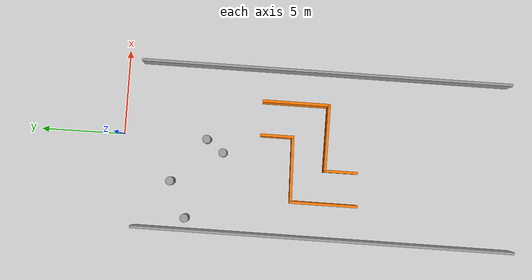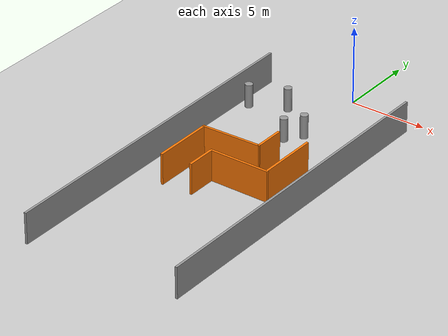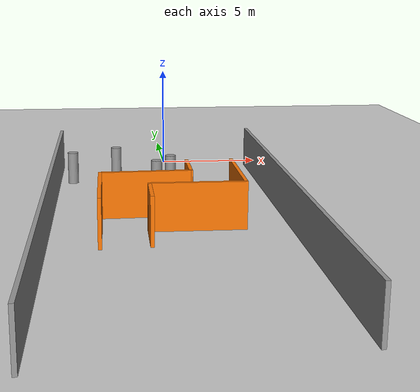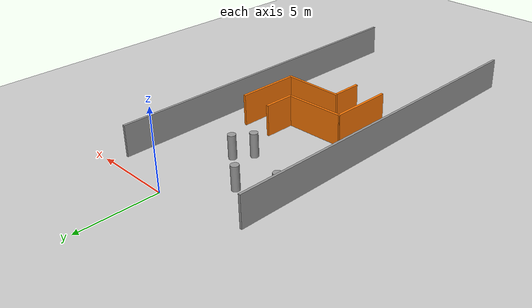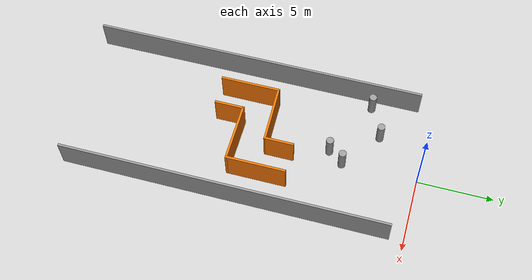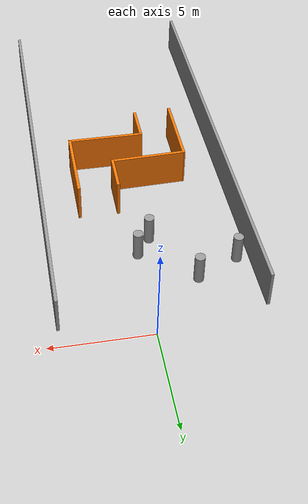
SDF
<sdf version="1.6">
 <world name="default">
  <light name="sun" type="directional">
   <pose>0 0 10 0 -0 0</pose>
   <diffuse>0.8 0.8 0.8 1</diffuse>
   <specular>0.2 0.2 0.2 1</specular>
   <attenuation>
    <range>1000</range>
    <constant>0.9</constant>
    <linear>0.01</linear>
    <quadratic>0.001</quadratic>
   </attenuation>
   <direction>-0.5 0.1 -0.9</direction>
  </light>
  <model name="ground_plane">
   <static>1</static>
   <link name="link">
    <collision name="collision">
     <geometry><plane><normal>0 0 1</normal><size>100 100</size></plane></geometry>
     <surface><friction><ode><mu>100</mu><mu2>50</mu2></ode></friction></surface>
    </collision>
    <visual name="visual">
     <cast_shadows>0</cast_shadows>
     <geometry><plane><normal>0 0 1</normal><size>100 100</size></plane></geometry>
     <material>
      <script><uri>file://media/materials/scripts/gazebo.material</uri><name>Gazebo/Grey</name></script>
     </material>
    </visual>
    <velocity_decay><linear>0</linear><angular>0</angular></velocity_decay>
   </link>
  </model>
  <physics name="default_physics" default="0" type="ode">
   <max_step_size>0.001</max_step_size>
   <real_time_factor>1</real_time_factor>
   <real_time_update_rate>1000</real_time_update_rate>
  </physics>
  <scene><ambient>0.4 0.4 0.4 1</ambient><background>0.7 0.7 0.7 1</background><shadows>1</shadows></scene>
  <spherical_coordinates>
   <surface_model>EARTH_WGS84</surface_model>
   <latitude_deg>0</latitude_deg>
   <longitude_deg>0</longitude_deg>
   <elevation>0</elevation>
   <heading_deg>0</heading_deg>
  </spherical_coordinates>
  <gravity>0 0 -9.8</gravity>
  <magnetic_field>6e-06 2.3e-05 -4.2e-05</magnetic_field>
  <atmosphere type="adiabatic"/>
  <model name="box_1">
   <link name="link">
    <inertial>
     <mass>1</mass>
     <inertia><ixx>0.145833</ixx><ixy>0</ixy><ixz>0</ixz><iyy>0.145833</iyy><iyz>0</iyz><izz>0.125</izz></inertia>
    </inertial>
    <visual name="visual">
     <geometry><cylinder><radius>0.25</radius><length>2</length></cylinder></geometry>
     <material>
      <script><name>Gazebo/Grey</name><uri>file://media/materials/scripts/gazebo.material</uri></script>
      <ambient>0.3 0.3 0.3 1</ambient>
      <diffuse>0.7 0.7 0.7 1</diffuse>
      <specular>0.01 0.01 0.01 1</specular>
      <emissive>0 0 0 1</emissive>
      <shader type="vertex"><normal_map>__default__</normal_map></shader>
     </material>
    </visual>
    <collision name="collision">
     <geometry><cylinder><radius>0.5</radius><length>1</length></cylinder></geometry>
     <surface>
      <friction>
       <ode><mu>1</mu><mu2>1</mu2><fdir1>0 0 0</fdir1><slip1>0</slip1><slip2>0</slip2></ode>
       <torsional>
        <coefficient>1</coefficient>
        <patch_radius>0</patch_radius>
        <surface_radius>0</surface_radius>
        <use_patch_radius>1</use_patch_radius>
        <ode><slip>0</slip></ode>
       </torsional>
      </friction>
      <bounce><restitution_coefficient>0</restitution_coefficient><threshold>1e+06</threshold></bounce>
      <contact>
       <collide_without_contact>0</collide_without_contact>
       <collide_without_contact_bitmask>1</collide_without_contact_bitmask>
       <collide_bitmask>1</collide_bitmask>
       <ode>
        <soft_cfm>0</soft_cfm>
        <soft_erp>0.2</soft_erp>
        <kp>1e+13</kp>
        <kd>1</kd>
        <max_vel>0.01</max_vel>
        <min_depth>0</min_depth>
       </ode>
       <bullet>
        <split_impulse>1</split_impulse>
        <split_impulse_penetration_threshold>-0.01</split_impulse_penetration_threshold>
        <soft_cfm>0</soft_cfm>
        <soft_erp>0.2</soft_erp>
        <kp>1e+13</kp>
        <kd>1</kd>
       </bullet>
      </contact>
     </surface>
    </collision>
   </link>
   <static>0</static>
   <pose>-2.6 -3 0.5 0 -0 0</pose>
  </model>
  <model name="box_2">
   <link name="link">
    <inertial>
     <mass>1</mass>
     <inertia><ixx>0.145833</ixx><ixy>0</ixy><ixz>0</ixz><iyy>0.145833</iyy><iyz>0</iyz><izz>0.125</izz></inertia>
    </inertial>
    <visual name="visual">
     <geometry><cylinder><radius>0.25</radius><length>2</length></cylinder></geometry>
     <material>
      <script><name>Gazebo/Grey</name><uri>file://media/materials/scripts/gazebo.material</uri></script>
      <ambient>0.3 0.3 0.3 1</ambient>
      <diffuse>0.7 0.7 0.7 1</diffuse>
      <specular>0.01 0.01 0.01 1</specular>
      <emissive>0 0 0 1</emissive>
      <shader type="vertex"><normal_map>__default__</normal_map></shader>
     </material>
    </visual>
    <collision name="collision">
     <geometry><cylinder><radius>0.5</radius><length>1</length></cylinder></geometry>
     <surface>
      <friction>
       <ode><mu>1</mu><mu2>1</mu2><fdir1>0 0 0</fdir1><slip1>0</slip1><slip2>0</slip2></ode>
       <torsional>
        <coefficient>1</coefficient>
        <patch_radius>0</patch_radius>
        <surface_radius>0</surface_radius>
        <use_patch_radius>1</use_patch_radius>
        <ode><slip>0</slip></ode>
       </torsional>
      </friction>
      <bounce><restitution_coefficient>0</restitution_coefficient><threshold>1e+06</threshold></bounce>
      <contact>
       <collide_without_contact>0</collide_without_contact>
       <collide_without_contact_bitmask>1</collide_without_contact_bitmask>
       <collide_bitmask>1</collide_bitmask>
       <ode>
        <soft_cfm>0</soft_cfm>
        <soft_erp>0.2</soft_erp>
        <kp>1e+13</kp>
        <kd>1</kd>
        <max_vel>0.01</max_vel>
        <min_depth>0</min_depth>
       </ode>
       <bullet>
        <split_impulse>1</split_impulse>
        <split_impulse_penetration_threshold>-0.01</split_impulse_penetration_threshold>
        <soft_cfm>0</soft_cfm>
        <soft_erp>0.2</soft_erp>
        <kp>1e+13</kp>
        <kd>1</kd>
       </bullet>
      </contact>
     </surface>
    </collision>
   </link>
   <static>0</static>
   <pose>-4.73333 -4 0.5 0 -0 0</pose>
  </model>
  <model name="box_3">
   <link name="link">
    <inertial>
     <mass>1</mass>
     <inertia><ixx>0.145833</ixx><ixy>0</ixy><ixz>0</ixz><iyy>0.145833</iyy><iyz>0</iyz><izz>0.125</izz></inertia>
    </inertial>
    <visual name="visual">
     <geometry><cylinder><radius>0.25</radius><length>2</length></cylinder></geometry>
     <material>
      <script><name>Gazebo/Grey</name><uri>file://media/materials/scripts/gazebo.material</uri></script>
      <ambient>0.3 0.3 0.3 1</ambient>
      <diffuse>0.7 0.7 0.7 1</diffuse>
      <specular>0.01 0.01 0.01 1</specular>
      <emissive>0 0 0 1</emissive>
      <shader type="vertex"><normal_map>__default__</normal_map></shader>
     </material>
    </visual>
    <collision name="collision">
     <geometry><cylinder><radius>0.5</radius><length>1</length></cylinder></geometry>
     <surface>
      <friction>
       <ode><mu>1</mu><mu2>1</mu2><fdir1>0 0 0</fdir1><slip1>0</slip1><slip2>0</slip2></ode>
       <torsional>
        <coefficient>1</coefficient>
        <patch_radius>0</patch_radius>
        <surface_radius>0</surface_radius>
        <use_patch_radius>1</use_patch_radius>
        <ode><slip>0</slip></ode>
       </torsional>
      </friction>
      <bounce><restitution_coefficient>0</restitution_coefficient><threshold>1e+06</threshold></bounce>
      <contact>
       <collide_without_contact>0</collide_without_contact>
       <collide_without_contact_bitmask>1</collide_without_contact_bitmask>
       <collide_bitmask>1</collide_bitmask>
       <ode>
        <soft_cfm>0</soft_cfm>
        <soft_erp>0.2</soft_erp>
        <kp>1e+13</kp>
        <kd>1</kd>
        <max_vel>0.01</max_vel>
        <min_depth>0</min_depth>
       </ode>
       <bullet>
        <split_impulse>1</split_impulse>
        <split_impulse_penetration_threshold>-0.01</split_impulse_penetration_threshold>
        <soft_cfm>0</soft_cfm>
        <soft_erp>0.2</soft_erp>
        <kp>1e+13</kp>
        <kd>1</kd>
       </bullet>
      </contact>
     </surface>
    </collision>
   </link>
   <static>0</static>
   <pose>-0.733333 -6 0.5 0 -0 0</pose>
  </model>
  <model name="box_4">
   <link name="link">
    <inertial>
     <mass>1</mass>
     <inertia><ixx>0.145833</ixx><ixy>0</ixy><ixz>0</ixz><iyy>0.145833</iyy><iyz>0</iyz><izz>0.125</izz></inertia>
    </inertial>
    <visual name="visual">
     <geometry><cylinder><radius>0.25</radius><length>2</length></cylinder></geometry>
     <material>
      <script><name>Gazebo/Grey</name><uri>file://media/materials/scripts/gazebo.material</uri></script>
      <ambient>0.3 0.3 0.3 1</ambient>
      <diffuse>0.7 0.7 0.7 1</diffuse>
      <specular>0.01 0.01 0.01 1</specular>
      <emissive>0 0 0 1</emissive>
      <shader type="vertex"><normal_map>__default__</normal_map></shader>
     </material>
    </visual>
    <collision name="collision">
     <geometry><cylinder><radius>0.5</radius><length>1</length></cylinder></geometry>
     <surface>
      <friction>
       <ode><mu>1</mu><mu2>1</mu2><fdir1>0 0 0</fdir1><slip1>0</slip1><slip2>0</slip2></ode>
       <torsional>
        <coefficient>1</coefficient>
        <patch_radius>0</patch_radius>
        <surface_radius>0</surface_radius>
        <use_patch_radius>1</use_patch_radius>
        <ode><slip>0</slip></ode>
       </torsional>
      </friction>
      <bounce><restitution_coefficient>0</restitution_coefficient><threshold>1e+06</threshold></bounce>
      <contact>
       <collide_without_contact>0</collide_without_contact>
       <collide_without_contact_bitmask>1</collide_without_contact_bitmask>
       <collide_bitmask>1</collide_bitmask>
       <ode>
        <soft_cfm>0</soft_cfm>
        <soft_erp>0.2</soft_erp>
        <kp>1e+13</kp>
        <kd>1</kd>
        <max_vel>0.01</max_vel>
        <min_depth>0</min_depth>
       </ode>
       <bullet>
        <split_impulse>1</split_impulse>
        <split_impulse_penetration_threshold>-0.01</split_impulse_penetration_threshold>
        <soft_cfm>0</soft_cfm>
        <soft_erp>0.2</soft_erp>
        <kp>1e+13</kp>
        <kd>1</kd>
       </bullet>
      </contact>
     </surface>
    </collision>
   </link>
   <static>0</static>
   <pose>0 -5 0.5 0 -0 0</pose>
  </model>
  <model name="jy_world_0">
   <link name="Wall_29">
    <pose>-4.806 0 0 0 0 -1.5708</pose>
    <visual name="Wall_29_Visual">
     <pose>0 0 1 0 -0 0</pose>
     <geometry><box><size>22.5 0.15 2</size></box></geometry>
     <material>
      <script><uri>file://media/materials/scripts/gazebo.material</uri><name>Gazebo/Grey</name></script>
      <ambient>1 1 1 1</ambient>
      <diffuse>0.7 0.7 0.7 1</diffuse>
      <specular>0.01 0.01 0.01 1</specular>
      <emissive>0 0 0 1</emissive>
     </material>
    </visual>
    <collision name="Wall_29_Collision">
     <pose>0 0 1 0 -0 0</pose>
     <geometry><box><size>22.5 0.15 2</size></box></geometry>
     <surface>
      <friction>
       <ode><mu>1</mu><mu2>1</mu2><fdir1>0 0 0</fdir1><slip1>0</slip1><slip2>0</slip2></ode>
       <torsional>
        <coefficient>1</coefficient>
        <patch_radius>0</patch_radius>
        <surface_radius>0</surface_radius>
        <use_patch_radius>1</use_patch_radius>
        <ode><slip>0</slip></ode>
       </torsional>
      </friction>
      <bounce><restitution_coefficient>0</restitution_coefficient><threshold>1e+06</threshold></bounce>
      <contact>
       <collide_without_contact>0</collide_without_contact>
       <collide_without_contact_bitmask>1</collide_without_contact_bitmask>
       <collide_bitmask>1</collide_bitmask>
       <ode>
        <soft_cfm>0</soft_cfm>
        <soft_erp>0.2</soft_erp>
        <kp>1e+13</kp>
        <kd>1</kd>
        <max_vel>0.01</max_vel>
        <min_depth>0</min_depth>
       </ode>
       <bullet>
        <split_impulse>1</split_impulse>
        <split_impulse_penetration_threshold>-0.01</split_impulse_penetration_threshold>
        <soft_cfm>0</soft_cfm>
        <soft_erp>0.2</soft_erp>
        <kp>1e+13</kp>
        <kd>1</kd>
       </bullet>
      </contact>
     </surface>
    </collision>
   </link>
   <link name="Wall_36">
    <pose>5 0.322999 0 0 0 -1.5708</pose>
    <inertial>
     <mass>1</mass>
     <inertia><ixx>1</ixx><ixy>0</ixy><ixz>0</ixz><iyy>1</iyy><iyz>0</iyz><izz>1</izz></inertia>
    </inertial>
    <visual name="Wall_36_Visual">
     <pose>0 0 1 0 -0 0</pose>
     <geometry><box><size>21.75 0.15 2</size></box></geometry>
     <material>
      <script><uri>file://media/materials/scripts/gazebo.material</uri><name>Gazebo/Grey</name></script>
      <ambient>1 1 1 1</ambient>
      <diffuse>0.7 0.7 0.7 1</diffuse>
      <specular>0.01 0.01 0.01 1</specular>
      <emissive>0 0 0 1</emissive>
      <shader type="vertex"><normal_map>__default__</normal_map></shader>
     </material>
    </visual>
    <collision name="Wall_36_Collision">
     <pose>0 0 1 0 -0 0</pose>
     <geometry><box><size>21.75 0.15 2</size></box></geometry>
     <surface>
      <friction>
       <ode><mu>1</mu><mu2>1</mu2><fdir1>0 0 0</fdir1><slip1>0</slip1><slip2>0</slip2></ode>
       <torsional>
        <coefficient>1</coefficient>
        <patch_radius>0</patch_radius>
        <surface_radius>0</surface_radius>
        <use_patch_radius>1</use_patch_radius>
        <ode><slip>0</slip></ode>
       </torsional>
      </friction>
      <bounce><restitution_coefficient>0</restitution_coefficient><threshold>1e+06</threshold></bounce>
      <contact>
       <collide_without_contact>0</collide_without_contact>
       <collide_without_contact_bitmask>1</collide_without_contact_bitmask>
       <collide_bitmask>1</collide_bitmask>
       <ode>
        <soft_cfm>0</soft_cfm>
        <soft_erp>0.2</soft_erp>
        <kp>1e+13</kp>
        <kd>1</kd>
        <max_vel>0.01</max_vel>
        <min_depth>0</min_depth>
       </ode>
       <bullet>
        <split_impulse>1</split_impulse>
        <split_impulse_penetration_threshold>-0.01</split_impulse_penetration_threshold>
        <soft_cfm>0</soft_cfm>
        <soft_erp>0.2</soft_erp>
        <kp>1e+13</kp>
        <kd>1</kd>
       </bullet>
      </contact>
     </surface>
    </collision>
   </link>
   <link name="Wall_47">
    <pose>3.076 2.012 0 0 0 -1.5708</pose>
    <visual name="Wall_47_Visual">
     <pose>0 0 1 0 -0 0</pose>
     <geometry><box><size>4 0.15 2</size></box></geometry>
     <material>
      <script><uri>file://media/materials/scripts/gazebo.material</uri><name>Gazebo/Grey</name></script>
      <ambient>0.996078 0.47451 0.0196078 1</ambient>
      <diffuse>0.7 0.7 0.7 1</diffuse>
      <specular>0.01 0.01 0.01 1</specular>
      <emissive>0 0 0 1</emissive>
     </material>
    </visual>
    <collision name="Wall_47_Collision">
     <pose>0 0 1 0 -0 0</pose>
     <geometry><box><size>4 0.15 2</size></box></geometry>
     <surface>
      <friction>
       <ode><mu>1</mu><mu2>1</mu2><fdir1>0 0 0</fdir1><slip1>0</slip1><slip2>0</slip2></ode>
       <torsional>
        <coefficient>1</coefficient>
        <patch_radius>0</patch_radius>
        <surface_radius>0</surface_radius>
        <use_patch_radius>1</use_patch_radius>
        <ode><slip>0</slip></ode>
       </torsional>
      </friction>
      <bounce><restitution_coefficient>0</restitution_coefficient><threshold>1e+06</threshold></bounce>
      <contact>
       <collide_without_contact>0</collide_without_contact>
       <collide_without_contact_bitmask>1</collide_without_contact_bitmask>
       <collide_bitmask>1</collide_bitmask>
       <ode>
        <soft_cfm>0</soft_cfm>
        <soft_erp>0.2</soft_erp>
        <kp>1e+13</kp>
        <kd>1</kd>
        <max_vel>0.01</max_vel>
        <min_depth>0</min_depth>
       </ode>
       <bullet>
        <split_impulse>1</split_impulse>
        <split_impulse_penetration_threshold>-0.01</split_impulse_penetration_threshold>
        <soft_cfm>0</soft_cfm>
        <soft_erp>0.2</soft_erp>
        <kp>1e+13</kp>
        <kd>1</kd>
       </bullet>
      </contact>
     </surface>
    </collision>
   </link>
   <link name="Wall_51">
    <pose>1.076 3.012 0 0 0 -1.5708</pose>
    <visual name="Wall_51_Visual">
     <pose>0 0 1 0 -0 0</pose>
     <geometry><box><size>2 0.15 2</size></box></geometry>
     <material>
      <script><uri>file://media/materials/scripts/gazebo.material</uri><name>Gazebo/Grey</name></script>
      <ambient>0.996078 0.47451 0.0196078 1</ambient>
      <diffuse>0.7 0.7 0.7 1</diffuse>
      <specular>0.01 0.01 0.01 1</specular>
      <emissive>0 0 0 1</emissive>
     </material>
    </visual>
    <collision name="Wall_51_Collision">
     <pose>0 0 1 0 -0 0</pose>
     <geometry><box><size>2 0.15 2</size></box></geometry>
     <surface>
      <friction>
       <ode><mu>1</mu><mu2>1</mu2><fdir1>0 0 0</fdir1><slip1>0</slip1><slip2>0</slip2></ode>
       <torsional>
        <coefficient>1</coefficient>
        <patch_radius>0</patch_radius>
        <surface_radius>0</surface_radius>
        <use_patch_radius>1</use_patch_radius>
        <ode><slip>0</slip></ode>
       </torsional>
      </friction>
      <bounce><restitution_coefficient>0</restitution_coefficient><threshold>1e+06</threshold></bounce>
      <contact>
       <collide_without_contact>0</collide_without_contact>
       <collide_without_contact_bitmask>1</collide_without_contact_bitmask>
       <collide_bitmask>1</collide_bitmask>
       <ode>
        <soft_cfm>0</soft_cfm>
        <soft_erp>0.2</soft_erp>
        <kp>1e+13</kp>
        <kd>1</kd>
        <max_vel>0.01</max_vel>
        <min_depth>0</min_depth>
       </ode>
       <bullet>
        <split_impulse>1</split_impulse>
        <split_impulse_penetration_threshold>-0.01</split_impulse_penetration_threshold>
        <soft_cfm>0</soft_cfm>
        <soft_erp>0.2</soft_erp>
        <kp>1e+13</kp>
        <kd>1</kd>
       </bullet>
      </contact>
     </surface>
    </collision>
   </link>
   <link name="Wall_53">
    <pose>-0.829 2.0265 0 0 0 -3.10984</pose>
    <visual name="Wall_53_Visual">
     <pose>0 0 1 0 -0 0</pose>
     <geometry><box><size>3.96192 0.15 2</size></box></geometry>
     <material>
      <script><uri>file://media/materials/scripts/gazebo.material</uri><name>Gazebo/Grey</name></script>
      <ambient>0.996078 0.47451 0.0196078 1</ambient>
      <diffuse>0.7 0.7 0.7 1</diffuse>
      <specular>0.01 0.01 0.01 1</specular>
      <emissive>0 0 0 1</emissive>
     </material>
    </visual>
    <collision name="Wall_53_Collision">
     <pose>0 0 1 0 -0 0</pose>
     <geometry><box><size>3.96192 0.15 2</size></box></geometry>
     <surface>
      <friction>
       <ode><mu>1</mu><mu2>1</mu2><fdir1>0 0 0</fdir1><slip1>0</slip1><slip2>0</slip2></ode>
       <torsional>
        <coefficient>1</coefficient>
        <patch_radius>0</patch_radius>
        <surface_radius>0</surface_radius>
        <use_patch_radius>1</use_patch_radius>
        <ode><slip>0</slip></ode>
       </torsional>
      </friction>
      <bounce><restitution_coefficient>0</restitution_coefficient><threshold>1e+06</threshold></bounce>
      <contact>
       <collide_without_contact>0</collide_without_contact>
       <collide_without_contact_bitmask>1</collide_without_contact_bitmask>
       <collide_bitmask>1</collide_bitmask>
       <ode>
        <soft_cfm>0</soft_cfm>
        <soft_erp>0.2</soft_erp>
        <kp>1e+13</kp>
        <kd>1</kd>
        <max_vel>0.01</max_vel>
        <min_depth>0</min_depth>
       </ode>
       <bullet>
        <split_impulse>1</split_impulse>
        <split_impulse_penetration_threshold>-0.01</split_impulse_penetration_threshold>
        <soft_cfm>0</soft_cfm>
        <soft_erp>0.2</soft_erp>
        <kp>1e+13</kp>
        <kd>1</kd>
       </bullet>
      </contact>
     </surface>
    </collision>
   </link>
   <link name="Wall_55">
    <pose>1.151 0.086999 0 0 -0 3.14159</pose>
    <visual name="Wall_55_Visual">
     <pose>0 0 1 0 -0 0</pose>
     <geometry><box><size>4 0.15 2</size></box></geometry>
     <material>
      <script><uri>file://media/materials/scripts/gazebo.material</uri><name>Gazebo/Grey</name></script>
      <ambient>0.996078 0.47451 0.0196078 1</ambient>
      <diffuse>0.7 0.7 0.7 1</diffuse>
      <specular>0.01 0.01 0.01 1</specular>
      <emissive>0 0 0 1</emissive>
     </material>
    </visual>
    <collision name="Wall_55_Collision">
     <pose>0 0 1 0 -0 0</pose>
     <geometry><box><size>4 0.15 2</size></box></geometry>
     <surface>
      <friction>
       <ode><mu>1</mu><mu2>1</mu2><fdir1>0 0 0</fdir1><slip1>0</slip1><slip2>0</slip2></ode>
       <torsional>
        <coefficient>1</coefficient>
        <patch_radius>0</patch_radius>
        <surface_radius>0</surface_radius>
        <use_patch_radius>1</use_patch_radius>
        <ode><slip>0</slip></ode>
       </torsional>
      </friction>
      <bounce><restitution_coefficient>0</restitution_coefficient><threshold>1e+06</threshold></bounce>
      <contact>
       <collide_without_contact>0</collide_without_contact>
       <collide_without_contact_bitmask>1</collide_without_contact_bitmask>
       <collide_bitmask>1</collide_bitmask>
       <ode>
        <soft_cfm>0</soft_cfm>
        <soft_erp>0.2</soft_erp>
        <kp>1e+13</kp>
        <kd>1</kd>
        <max_vel>0.01</max_vel>
        <min_depth>0</min_depth>
       </ode>
       <bullet>
        <split_impulse>1</split_impulse>
        <split_impulse_penetration_threshold>-0.01</split_impulse_penetration_threshold>
        <soft_cfm>0</soft_cfm>
        <soft_erp>0.2</soft_erp>
        <kp>1e+13</kp>
        <kd>1</kd>
       </bullet>
      </contact>
     </surface>
    </collision>
   </link>
   <link name="Wall_57">
    <pose>-0.774 -0.838001 0 0 0 -1.5708</pose>
    <visual name="Wall_57_Visual">
     <pose>0 0 1 0 -0 0</pose>
     <geometry><box><size>2 0.15 2</size></box></geometry>
     <material>
      <script><uri>file://media/materials/scripts/gazebo.material</uri><name>Gazebo/Grey</name></script>
      <ambient>0.996078 0.47451 0.0196078 1</ambient>
      <diffuse>0.7 0.7 0.7 1</diffuse>
      <specular>0.01 0.01 0.01 1</specular>
      <emissive>0 0 0 1</emissive>
     </material>
    </visual>
    <collision name="Wall_57_Collision">
     <pose>0 0 1 0 -0 0</pose>
     <geometry><box><size>2 0.15 2</size></box></geometry>
     <surface>
      <friction>
       <ode><mu>1</mu><mu2>1</mu2><fdir1>0 0 0</fdir1><slip1>0</slip1><slip2>0</slip2></ode>
       <torsional>
        <coefficient>1</coefficient>
        <patch_radius>0</patch_radius>
        <surface_radius>0</surface_radius>
        <use_patch_radius>1</use_patch_radius>
        <ode><slip>0</slip></ode>
       </torsional>
      </friction>
      <bounce><restitution_coefficient>0</restitution_coefficient><threshold>1e+06</threshold></bounce>
      <contact>
       <collide_without_contact>0</collide_without_contact>
       <collide_without_contact_bitmask>1</collide_without_contact_bitmask>
       <collide_bitmask>1</collide_bitmask>
       <ode>
        <soft_cfm>0</soft_cfm>
        <soft_erp>0.2</soft_erp>
        <kp>1e+13</kp>
        <kd>1</kd>
        <max_vel>0.01</max_vel>
        <min_depth>0</min_depth>
       </ode>
       <bullet>
        <split_impulse>1</split_impulse>
        <split_impulse_penetration_threshold>-0.01</split_impulse_penetration_threshold>
        <soft_cfm>0</soft_cfm>
        <soft_erp>0.2</soft_erp>
        <kp>1e+13</kp>
        <kd>1</kd>
       </bullet>
      </contact>
     </surface>
    </collision>
   </link>
   <link name="Wall_59">
    <pose>-2.734 0.041 0 0 0 -1.5708</pose>
    <visual name="Wall_59_Visual">
     <pose>0 0 1 0 -0 0</pose>
     <geometry><box><size>4 0.15 2</size></box></geometry>
     <material>
      <script><uri>file://media/materials/scripts/gazebo.material</uri><name>Gazebo/Grey</name></script>
      <ambient>0.996078 0.47451 0.0196078 1</ambient>
      <diffuse>0.7 0.7 0.7 1</diffuse>
      <specular>0.01 0.01 0.01 1</specular>
      <emissive>0 0 0 1</emissive>
     </material>
    </visual>
    <collision name="Wall_59_Collision">
     <pose>0 0 1 0 -0 0</pose>
     <geometry><box><size>4 0.15 2</size></box></geometry>
     <surface>
      <friction>
       <ode><mu>1</mu><mu2>1</mu2><fdir1>0 0 0</fdir1><slip1>0</slip1><slip2>0</slip2></ode>
       <torsional>
        <coefficient>1</coefficient>
        <patch_radius>0</patch_radius>
        <surface_radius>0</surface_radius>
        <use_patch_radius>1</use_patch_radius>
        <ode><slip>0</slip></ode>
       </torsional>
      </friction>
      <bounce><restitution_coefficient>0</restitution_coefficient><threshold>1e+06</threshold></bounce>
      <contact>
       <collide_without_contact>0</collide_without_contact>
       <collide_without_contact_bitmask>1</collide_without_contact_bitmask>
       <collide_bitmask>1</collide_bitmask>
       <ode>
        <soft_cfm>0</soft_cfm>
        <soft_erp>0.2</soft_erp>
        <kp>1e+13</kp>
        <kd>1</kd>
        <max_vel>0.01</max_vel>
        <min_depth>0</min_depth>
       </ode>
       <bullet>
        <split_impulse>1</split_impulse>
        <split_impulse_penetration_threshold>-0.01</split_impulse_penetration_threshold>
        <soft_cfm>0</soft_cfm>
        <soft_erp>0.2</soft_erp>
        <kp>1e+13</kp>
        <kd>1</kd>
       </bullet>
      </contact>
     </surface>
    </collision>
   </link>
   <static>1</static>
   <pose>-0.616937 -12.1378 0 0 -0 0</pose>
  </model>
 </world>
</sdf>
